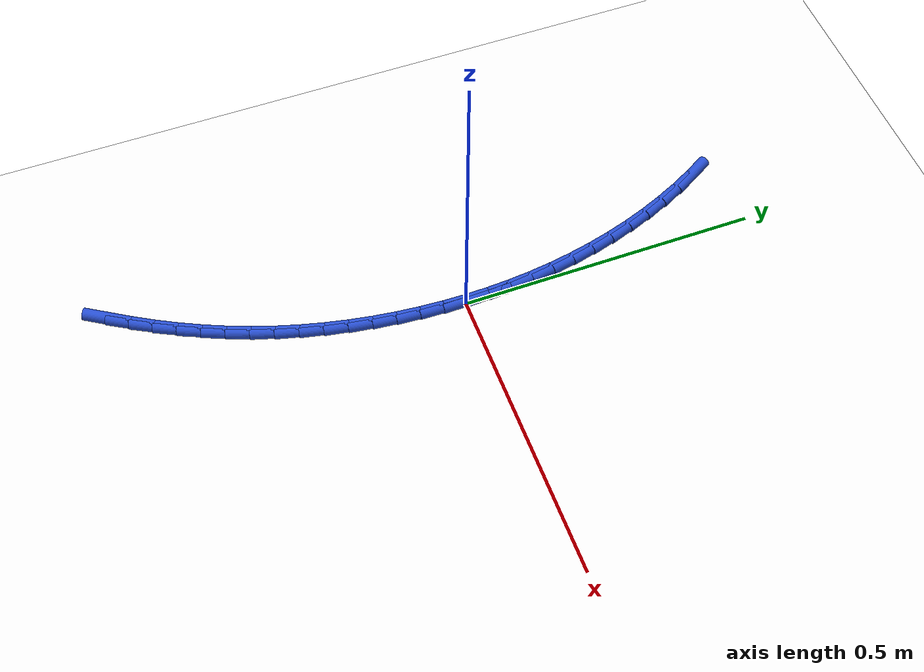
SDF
<sdf version="1.6">
 <world name="default">
  <model name="ground_plane">
   <static>1</static>
   <link name="link">
    <collision name="collision">
     <geometry><plane><normal>0 0 1</normal><size>100 100</size></plane></geometry>
     <surface><friction><ode><mu>100</mu><mu2>50</mu2></ode></friction></surface>
    </collision>
    <visual name="visual">
     <cast_shadows>0</cast_shadows>
     <geometry><plane><normal>0 0 1</normal><size>100 100</size></plane></geometry>
     <material>
      <script><uri>file://media/materials/scripts/gazebo.material</uri><name>Gazebo/WhiteGlow</name></script>
     </material>
    </visual>
   </link>
  </model>
  <model name="line">
   <link name="link_0">
    <pose>1.5612511283791264e-17 4.85722573273506e-17 0.01 0 1.57 -1.555591541682877</pose>
    <collision name="collision">
     <geometry><cylinder><radius>0.01</radius><length>0.08</length></cylinder></geometry>
    </collision>
    <visual name="visual">
     <material>
      <script><name>Gazebo/Blue</name><uri>file://media/materials/scripts/gazebo.material</uri></script>
     </material>
     <geometry><cylinder><radius>0.01</radius><length>0.08</length></cylinder></geometry>
    </visual>
   </link>
   <link name="link_1">
    <pose>-0.0005885862749706142 0.0387076116104246 0.01 0 1.57 -1.5178129012271784</pose>
    <collision name="collision">
     <geometry><cylinder><radius>0.01</radius><length>0.08</length></cylinder></geometry>
    </collision>
    <visual name="visual">
     <material>
      <script><name>Gazebo/Blue</name><uri>file://media/materials/scripts/gazebo.material</uri></script>
     </material>
     <geometry><cylinder><radius>0.01</radius><length>0.08</length></cylinder></geometry>
    </visual>
   </link>
   <link name="link_2">
    <pose>-0.0026369221183866086 0.07733136492439875 0.01 0 1.57 -1.4791910282201761</pose>
    <collision name="collision">
     <geometry><cylinder><radius>0.01</radius><length>0.08</length></cylinder></geometry>
    </collision>
    <visual name="visual">
     <material>
      <script><name>Gazebo/Blue</name><uri>file://media/materials/scripts/gazebo.material</uri></script>
     </material>
     <geometry><cylinder><radius>0.01</radius><length>0.08</length></cylinder></geometry>
    </visual>
   </link>
   <link name="link_3">
    <pose>-0.006173445390191705 0.11582941587694119 0.01 0 1.57 -1.4397211803669223</pose>
    <collision name="collision">
     <geometry><cylinder><radius>0.01</radius><length>0.08</length></cylinder></geometry>
    </collision>
    <visual name="visual">
     <material>
      <script><name>Gazebo/Blue</name><uri>file://media/materials/scripts/gazebo.material</uri></script>
     </material>
     <geometry><cylinder><radius>0.01</radius><length>0.08</length></cylinder></geometry>
    </visual>
   </link>
   <link name="link_4">
    <pose>-0.011226593950329676 0.15415992040307078 0.01 0 1.57 -1.399408882495788</pose>
    <collision name="collision">
     <geometry><cylinder><radius>0.01</radius><length>0.08</length></cylinder></geometry>
    </collision>
    <visual name="visual">
     <material>
      <script><name>Gazebo/Blue</name><uri>file://media/materials/scripts/gazebo.material</uri></script>
     </material>
     <geometry><cylinder><radius>0.01</radius><length>0.08</length></cylinder></geometry>
    </visual>
   </link>
   <link name="link_5">
    <pose>-0.017824805658744253 0.1922810344378062 0.01 0 1.57 -1.3582709610619266</pose>
    <collision name="collision">
     <geometry><cylinder><radius>0.01</radius><length>0.08</length></cylinder></geometry>
    </collision>
    <visual name="visual">
     <material>
      <script><name>Gazebo/Blue</name><uri>file://media/materials/scripts/gazebo.material</uri></script>
     </material>
     <geometry><cylinder><radius>0.01</radius><length>0.08</length></cylinder></geometry>
    </visual>
   </link>
   <link name="link_6">
    <pose>-0.025996518375379217 0.23015091391616618 0.01 0 1.57 -1.3163364549275616</pose>
    <collision name="collision">
     <geometry><cylinder><radius>0.01</radius><length>0.08</length></cylinder></geometry>
    </collision>
    <visual name="visual">
     <material>
      <script><name>Gazebo/Blue</name><uri>file://media/materials/scripts/gazebo.material</uri></script>
     </material>
     <geometry><cylinder><radius>0.01</radius><length>0.08</length></cylinder></geometry>
    </visual>
   </link>
   <link name="link_7">
    <pose>-0.0357701699601783 0.26772771477316953 0.01 0 1.57 -1.2736473337954513</pose>
    <collision name="collision">
     <geometry><cylinder><radius>0.01</radius><length>0.08</length></cylinder></geometry>
    </collision>
    <visual name="visual">
     <material>
      <script><name>Gazebo/Blue</name><uri>file://media/materials/scripts/gazebo.material</uri></script>
     </material>
     <geometry><cylinder><radius>0.01</radius><length>0.08</length></cylinder></geometry>
    </visual>
   </link>
   <link name="link_8">
    <pose>-0.047174198273085284 0.3049695929438351 0.01 0 1.57 -1.2302589522736047</pose>
    <collision name="collision">
     <geometry><cylinder><radius>0.01</radius><length>0.08</length></cylinder></geometry>
    </collision>
    <visual name="visual">
     <material>
      <script><name>Gazebo/Blue</name><uri>file://media/materials/scripts/gazebo.material</uri></script>
     </material>
     <geometry><cylinder><radius>0.01</radius><length>0.08</length></cylinder></geometry>
    </visual>
   </link>
   <link name="link_9">
    <pose>-0.06023704117404391 0.34183470436318153 0.01 0 1.57 -1.186250848896145</pose>
    <collision name="collision">
     <geometry><cylinder><radius>0.01</radius><length>0.08</length></cylinder></geometry>
    </collision>
    <visual name="visual">
     <material>
      <script><name>Gazebo/Blue</name><uri>file://media/materials/scripts/gazebo.material</uri></script>
     </material>
     <geometry><cylinder><radius>0.01</radius><length>0.08</length></cylinder></geometry>
    </visual>
   </link>
   <link name="link_10">
    <pose>-0.07497886510807039 0.37826188552131335 0.01 0 1.57 -1.1415805041103357</pose>
    <collision name="collision">
     <geometry><cylinder><radius>0.01</radius><length>0.08</length></cylinder></geometry>
    </collision>
    <visual name="visual">
     <material>
      <script><name>Gazebo/Blue</name><uri>file://media/materials/scripts/gazebo.material</uri></script>
     </material>
     <geometry><cylinder><radius>0.01</radius><length>0.08</length></cylinder></geometry>
    </visual>
   </link>
   <link name="link_11">
    <pose>-0.0913862449718094 0.414111513530583 0.01 0 1.57 -1.0959408074885353</pose>
    <collision name="collision">
     <geometry><cylinder><radius>0.01</radius><length>0.08</length></cylinder></geometry>
    </collision>
    <visual name="visual">
     <material>
      <script><name>Gazebo/Blue</name><uri>file://media/materials/scripts/gazebo.material</uri></script>
     </material>
     <geometry><cylinder><radius>0.01</radius><length>0.08</length></cylinder></geometry>
    </visual>
   </link>
   <link name="link_12">
    <pose>-0.1094372293748518 0.44922405075665156 0.01 0 1.57 -1.0489952138966714</pose>
    <collision name="collision">
     <geometry><cylinder><radius>0.01</radius><length>0.08</length></cylinder></geometry>
    </collision>
    <visual name="visual">
     <material>
      <script><name>Gazebo/Blue</name><uri>file://media/materials/scripts/gazebo.material</uri></script>
     </material>
     <geometry><cylinder><radius>0.01</radius><length>0.08</length></cylinder></geometry>
    </visual>
   </link>
   <link name="link_165">
    <pose>-0.16529544438564123 -0.5483467448838673 0.01 0 1.57 1.0082166635892247</pose>
    <collision name="collision">
     <geometry><cylinder><radius>0.01</radius><length>0.08</length></cylinder></geometry>
    </collision>
    <visual name="visual">
     <material>
      <script><name>Gazebo/Blue</name><uri>file://media/materials/scripts/gazebo.material</uri></script>
     </material>
     <geometry><cylinder><radius>0.01</radius><length>0.08</length></cylinder></geometry>
    </visual>
   </link>
   <link name="link_166">
    <pose>-0.14462064335588176 -0.5155581735454278 0.01 0 1.57 1.0432293643883543</pose>
    <collision name="collision">
     <geometry><cylinder><radius>0.01</radius><length>0.08</length></cylinder></geometry>
    </collision>
    <visual name="visual">
     <material>
      <script><name>Gazebo/Blue</name><uri>file://media/materials/scripts/gazebo.material</uri></script>
     </material>
     <geometry><cylinder><radius>0.01</radius><length>0.08</length></cylinder></geometry>
    </visual>
   </link>
   <link name="link_167">
    <pose>-0.12512263444153532 -0.48209400741372965 0.01 0 1.57 1.0795676677184758</pose>
    <collision name="collision">
     <geometry><cylinder><radius>0.01</radius><length>0.08</length></cylinder></geometry>
    </collision>
    <visual name="visual">
     <material>
      <script><name>Gazebo/Blue</name><uri>file://media/materials/scripts/gazebo.material</uri></script>
     </material>
     <geometry><cylinder><radius>0.01</radius><length>0.08</length></cylinder></geometry>
    </visual>
   </link>
   <link name="link_168">
    <pose>-0.10686847693321647 -0.44797200753608607 0.01 0 1.57 1.11727448900213</pose>
    <collision name="collision">
     <geometry><cylinder><radius>0.01</radius><length>0.08</length></cylinder></geometry>
    </collision>
    <visual name="visual">
     <material>
      <script><name>Gazebo/Blue</name><uri>file://media/materials/scripts/gazebo.material</uri></script>
     </material>
     <geometry><cylinder><radius>0.01</radius><length>0.08</length></cylinder></geometry>
    </visual>
   </link>
   <link name="link_169">
    <pose>-0.08992523012153984 -0.41320993495980995 0.01 0 1.57 1.156380665859156</pose>
    <collision name="collision">
     <geometry><cylinder><radius>0.01</radius><length>0.08</length></cylinder></geometry>
    </collision>
    <visual name="visual">
     <material>
      <script><name>Gazebo/Blue</name><uri>file://media/materials/scripts/gazebo.material</uri></script>
     </material>
     <geometry><cylinder><radius>0.01</radius><length>0.08</length></cylinder></geometry>
    </visual>
   </link>
   <link name="link_170">
    <pose>-0.07435995329711984 -0.37782555073221397 0.01 0 1.57 1.196902389275678</pose>
    <collision name="collision">
     <geometry><cylinder><radius>0.01</radius><length>0.08</length></cylinder></geometry>
    </collision>
    <visual name="visual">
     <material>
      <script><name>Gazebo/Blue</name><uri>file://media/materials/scripts/gazebo.material</uri></script>
     </material>
     <geometry><cylinder><radius>0.01</radius><length>0.08</length></cylinder></geometry>
    </visual>
   </link>
   <link name="link_171">
    <pose>-0.060239705748932636 -0.34183661590173586 0.01 0 1.57 1.2384500182358036</pose>
    <collision name="collision">
     <geometry><cylinder><radius>0.01</radius><length>0.08</length></cylinder></geometry>
    </collision>
    <visual name="visual">
     <material>
      <script><name>Gazebo/Blue</name><uri>file://media/materials/scripts/gazebo.material</uri></script>
     </material>
     <geometry><cylinder><radius>0.01</radius><length>0.08</length></cylinder></geometry>
    </visual>
   </link>
   <link name="link_172">
    <pose>-0.04761868831324708 -0.305269703346683 0.01 0 1.57 1.2795086238739586</pose>
    <collision name="collision">
     <geometry><cylinder><radius>0.01</radius><length>0.08</length></cylinder></geometry>
    </collision>
    <visual name="visual">
     <material>
      <script><name>Gazebo/Blue</name><uri>file://media/materials/scripts/gazebo.material</uri></script>
     </material>
     <geometry><cylinder><radius>0.01</radius><length>0.08</length></cylinder></geometry>
    </visual>
   </link>
   <link name="link_173">
    <pose>-0.036500442572972136 -0.2681861024647013 0.01 0 1.57 1.3197632918387336</pose>
    <collision name="collision">
     <geometry><cylinder><radius>0.01</radius><length>0.08</length></cylinder></geometry>
    </collision>
    <visual name="visual">
     <material>
      <script><name>Gazebo/Blue</name><uri>file://media/materials/scripts/gazebo.material</uri></script>
     </material>
     <geometry><cylinder><radius>0.01</radius><length>0.08</length></cylinder></geometry>
    </visual>
   </link>
   <link name="link_174">
    <pose>-0.026876036029744175 -0.23065565107559052 0.01 0 1.57 1.3592875800827982</pose>
    <collision name="collision">
     <geometry><cylinder><radius>0.01</radius><length>0.08</length></cylinder></geometry>
    </collision>
    <visual name="visual">
     <material>
      <script><name>Gazebo/Blue</name><uri>file://media/materials/scripts/gazebo.material</uri></script>
     </material>
     <geometry><cylinder><radius>0.01</radius><length>0.08</length></cylinder></geometry>
    </visual>
   </link>
   <link name="link_175">
    <pose>-0.018736536185199583 -0.19274818699915036 0.01 0 1.57 1.3981610134811764</pose>
    <collision name="collision">
     <geometry><cylinder><radius>0.01</radius><length>0.08</length></cylinder></geometry>
    </collision>
    <visual name="visual">
     <material>
      <script><name>Gazebo/Blue</name><uri>file://media/materials/scripts/gazebo.material</uri></script>
     </material>
     <geometry><cylinder><radius>0.01</radius><length>0.08</length></cylinder></geometry>
    </visual>
   </link>
   <link name="link_176">
    <pose>-0.012073010540974595 -0.15453354805517983 0.01 0 1.57 1.436467964246108</pose>
    <collision name="collision">
     <geometry><cylinder><radius>0.01</radius><length>0.08</length></cylinder></geometry>
    </collision>
    <visual name="visual">
     <material>
      <script><name>Gazebo/Blue</name><uri>file://media/materials/scripts/gazebo.material</uri></script>
     </material>
     <geometry><cylinder><radius>0.01</radius><length>0.08</length></cylinder></geometry>
    </visual>
   </link>
   <link name="link_177">
    <pose>-0.006876526598705864 -0.11608157206348026 0.01 0 1.57 1.474296739999132</pose>
    <collision name="collision">
     <geometry><cylinder><radius>0.01</radius><length>0.08</length></cylinder></geometry>
    </collision>
    <visual name="visual">
     <material>
      <script><name>Gazebo/Blue</name><uri>file://media/materials/scripts/gazebo.material</uri></script>
     </material>
     <geometry><cylinder><radius>0.01</radius><length>0.08</length></cylinder></geometry>
    </visual>
   </link>
   <link name="link_178">
    <pose>-0.0031381518600296023 -0.07746209684385061 0.01 0 1.57 1.5117388601569721</pose>
    <collision name="collision">
     <geometry><cylinder><radius>0.01</radius><length>0.08</length></cylinder></geometry>
    </collision>
    <visual name="visual">
     <material>
      <script><name>Gazebo/Blue</name><uri>file://media/materials/scripts/gazebo.material</uri></script>
     </material>
     <geometry><cylinder><radius>0.01</radius><length>0.08</length></cylinder></geometry>
    </visual>
   </link>
   <link name="link_179">
    <pose>-0.0008489538265821885 -0.03874496021609067 0.01 0 1.57 1.54888849676525</pose>
    <collision name="collision">
     <geometry><cylinder><radius>0.01</radius><length>0.08</length></cylinder></geometry>
    </collision>
    <visual name="visual">
     <material>
      <script><name>Gazebo/Blue</name><uri>file://media/materials/scripts/gazebo.material</uri></script>
     </material>
     <geometry><cylinder><radius>0.01</radius><length>0.08</length></cylinder></geometry>
    </visual>
   </link>
   <link name="link_180">
    <pose>6.938893903907228e-18 -1.5265566588595902e-16 0.01 0 1.57 -1.5557506003546142</pose>
    <collision name="collision">
     <geometry><cylinder><radius>0.01</radius><length>0.08</length></cylinder></geometry>
    </collision>
    <visual name="visual">
     <material>
      <script><name>Gazebo/Blue</name><uri>file://media/materials/scripts/gazebo.material</uri></script>
     </material>
     <geometry><cylinder><radius>0.01</radius><length>0.08</length></cylinder></geometry>
    </visual>
   </link>
   <link name="link_181">
    <pose>-0.0005823578819193868 0.03870294598462119 0.01 0 1.57 -1.5557506003546138</pose>
    <collision name="collision">
     <geometry><cylinder><radius>0.01</radius><length>0.08</length></cylinder></geometry>
    </collision>
    <visual name="visual">
     <material>
      <script><name>Gazebo/Blue</name><uri>file://media/materials/scripts/gazebo.material</uri></script>
     </material>
     <geometry><cylinder><radius>0.01</radius><length>0.08</length></cylinder></geometry>
    </visual>
   </link>
  </model>
 </world>
</sdf>
